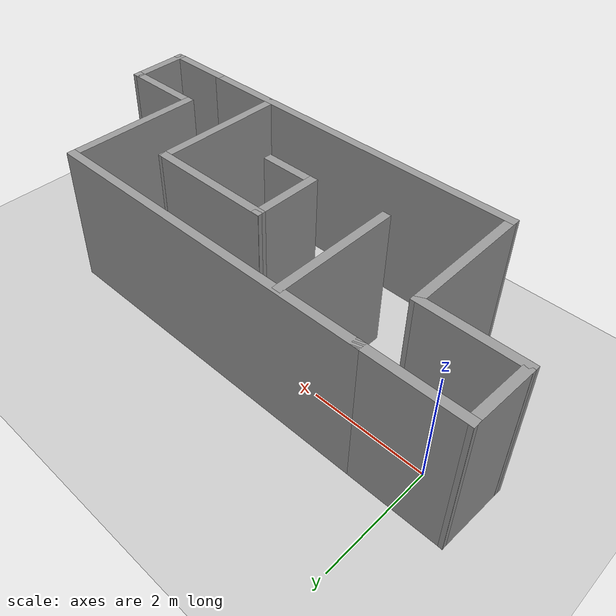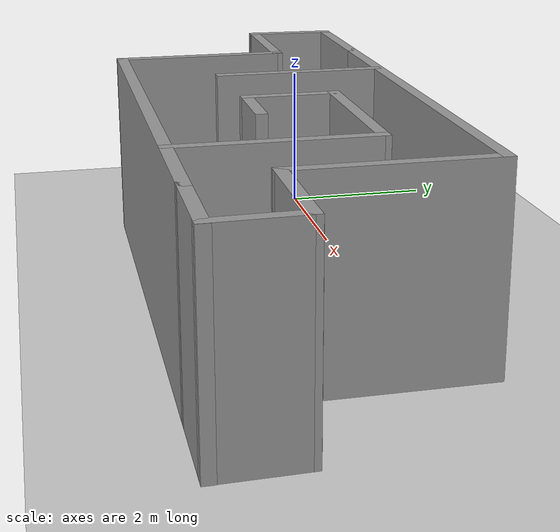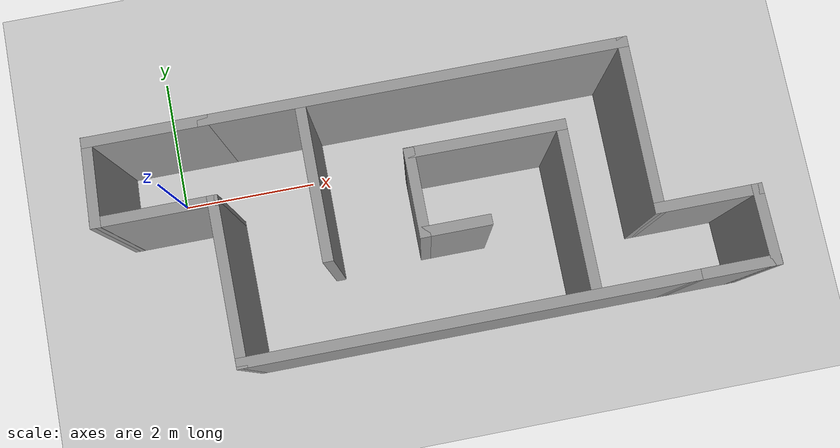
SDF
<sdf version="1.6">
 <world name="default">
  <light name="sun" type="directional">
   <pose>0 0 10 0 -0 0</pose>
   <diffuse>0.8 0.8 0.8 1</diffuse>
   <specular>0.2 0.2 0.2 1</specular>
   <attenuation>
    <range>1000</range>
    <constant>0.9</constant>
    <linear>0.01</linear>
    <quadratic>0.001</quadratic>
   </attenuation>
   <direction>-0.5 0.1 -0.9</direction>
  </light>
  <model name="ground_plane">
   <static>1</static>
   <link name="link">
    <collision name="collision">
     <geometry><plane><normal>0 0 1</normal><size>100 100</size></plane></geometry>
     <surface><friction><ode><mu>100</mu><mu2>50</mu2></ode></friction></surface>
    </collision>
    <visual name="visual">
     <cast_shadows>0</cast_shadows>
     <geometry><plane><normal>0 0 1</normal><size>100 100</size></plane></geometry>
     <material>
      <script><uri>file://media/materials/scripts/gazebo.material</uri><name>Gazebo/Grey</name></script>
     </material>
    </visual>
   </link>
  </model>
  <gravity>0 0 -9.8</gravity>
  <magnetic_field>6e-06 2.3e-05 -4.2e-05</magnetic_field>
  <atmosphere type="adiabatic"/>
  <physics name="default_physics" default="0" type="ode">
   <max_step_size>0.001</max_step_size>
   <real_time_factor>1</real_time_factor>
   <real_time_update_rate>1000</real_time_update_rate>
  </physics>
  <scene><ambient>0.4 0.4 0.4 1</ambient><background>0.7 0.7 0.7 1</background><shadows>1</shadows></scene>
  <spherical_coordinates>
   <surface_model>EARTH_WGS84</surface_model>
   <latitude_deg>0</latitude_deg>
   <longitude_deg>0</longitude_deg>
   <elevation>0</elevation>
   <heading_deg>0</heading_deg>
  </spherical_coordinates>
  <model name="maze01">
   <pose>3.62004 -1.01283 0 0 -0 0</pose>
   <link name="Wall_13">
    <collision name="Wall_13_Collision">
     <geometry><box><size>6.29594 0.15 2.5</size></box></geometry>
     <pose>0 0 1.25 0 -0 0</pose>
    </collision>
    <visual name="Wall_13_Visual">
     <pose>0 0 1.25 0 -0 0</pose>
     <geometry><box><size>6.29594 0.15 2.5</size></box></geometry>
     <material>
      <script><uri>file://media/materials/scripts/gazebo.material</uri><name>Gazebo/Grey</name></script>
      <ambient>1 1 1 1</ambient>
     </material>
     <meta><layer>0</layer></meta>
    </visual>
    <pose>0.262681 -1.66556 0 0 -0 3.14094</pose>
   </link>
   <link name="Wall_14">
    <collision name="Wall_14_Collision">
     <geometry><box><size>2.36478 0.15 2.5</size></box></geometry>
     <pose>0 0 1.25 0 -0 0</pose>
    </collision>
    <visual name="Wall_14_Visual">
     <pose>0 0 1.25 0 -0 0</pose>
     <geometry><box><size>2.36478 0.15 2.5</size></box></geometry>
     <material>
      <script><uri>file://media/materials/scripts/gazebo.material</uri><name>Gazebo/Grey</name></script>
      <ambient>1 1 1 1</ambient>
     </material>
     <meta><layer>0</layer></meta>
    </visual>
    <pose>-2.82157 -0.55622 0 0 -0 1.58098</pose>
   </link>
   <link name="Wall_16">
    <collision name="Wall_16_Collision">
     <geometry><box><size>2.25 0.15 2.5</size></box></geometry>
     <pose>0 0 1.25 0 -0 0</pose>
    </collision>
    <visual name="Wall_16_Visual">
     <pose>0 0 1.25 0 -0 0</pose>
     <geometry><box><size>2.25 0.15 2.5</size></box></geometry>
     <material>
      <script><uri>file://media/materials/scripts/gazebo.material</uri><name>Gazebo/Grey</name></script>
      <ambient>1 1 1 1</ambient>
     </material>
     <meta><layer>0</layer></meta>
    </visual>
    <pose>-1.45029 0.566449 0 0 0 -1.5708</pose>
   </link>
   <link name="Wall_18">
    <collision name="Wall_18_Collision">
     <geometry><box><size>1.25005 0.15 2.5</size></box></geometry>
     <pose>0 0 1.25 0 -0 0</pose>
    </collision>
    <visual name="Wall_18_Visual">
     <pose>0 0 1.25 0 -0 0</pose>
     <geometry><box><size>1.25005 0.15 2.5</size></box></geometry>
     <material>
      <script><uri>file://media/materials/scripts/gazebo.material</uri><name>Gazebo/Grey</name></script>
      <ambient>1 1 1 1</ambient>
     </material>
     <meta><layer>0</layer></meta>
    </visual>
    <pose>-0.110289 0.141421 0 0 0 -1.5708</pose>
   </link>
   <link name="Wall_21">
    <collision name="Wall_21_Collision">
     <geometry><box><size>2.25 0.15 2.5</size></box></geometry>
     <pose>0 0 1.25 0 -0 0</pose>
    </collision>
    <visual name="Wall_21_Visual">
     <pose>0 0 1.25 0 -0 0</pose>
     <geometry><box><size>2.25 0.15 2.5</size></box></geometry>
     <material>
      <script><uri>file://media/materials/scripts/gazebo.material</uri><name>Gazebo/Grey</name></script>
      <ambient>1 1 1 1</ambient>
     </material>
     <meta><layer>0</layer></meta>
    </visual>
    <pose>0.939711 0.691421 0 0 0 -0.004735</pose>
   </link>
   <link name="Wall_22">
    <collision name="Wall_22_Collision">
     <geometry><box><size>2.5 0.15 2.5</size></box></geometry>
     <pose>0 0 1.25 0 -0 0</pose>
    </collision>
    <visual name="Wall_22_Visual">
     <pose>0 0 1.25 0 -0 0</pose>
     <geometry><box><size>2.5 0.15 2.5</size></box></geometry>
     <material>
      <script><uri>file://media/materials/scripts/gazebo.material</uri><name>Gazebo/Grey</name></script>
      <ambient>1 1 1 1</ambient>
     </material>
     <meta><layer>0</layer></meta>
    </visual>
    <pose>1.98971 -0.488551 0 0 0 -1.5708</pose>
   </link>
   <link name="Wall_24">
    <collision name="Wall_24_Collision">
     <geometry><box><size>1 0.15 2.5</size></box></geometry>
     <pose>0 0 1.25 0 -0 0</pose>
    </collision>
    <visual name="Wall_24_Visual">
     <pose>0 0 1.25 0 -0 0</pose>
     <geometry><box><size>1 0.15 2.5</size></box></geometry>
     <material>
      <script><uri>file://media/materials/scripts/gazebo.material</uri><name>Gazebo/Grey</name></script>
      <ambient>1 1 1 1</ambient>
     </material>
     <meta><layer>0</layer></meta>
    </visual>
    <pose>0.314711 -0.408579 0 0 -0 0</pose>
   </link>
   <link name="Wall_27">
    <collision name="Wall_27_Collision">
     <geometry><box><size>1.75 0.15 2.5</size></box></geometry>
     <pose>0 0 1.25 0 -0 0</pose>
    </collision>
    <visual name="Wall_27_Visual">
     <pose>0 0 1.25 0 -0 0</pose>
     <geometry><box><size>1.75 0.15 2.5</size></box></geometry>
     <material>
      <script><uri>file://media/materials/scripts/gazebo.material</uri><name>Gazebo/Grey</name></script>
      <ambient>1 1 1 1</ambient>
     </material>
     <meta><layer>0</layer></meta>
    </visual>
    <pose>-3.59029 1.66645 0 0 -0 3.14159</pose>
   </link>
   <link name="Wall_34">
    <collision name="Wall_34_Collision">
     <geometry><box><size>1.75 0.15 2.5</size></box></geometry>
     <pose>0 0 1.25 0 -0 0</pose>
    </collision>
    <visual name="Wall_34_Visual">
     <pose>0 0 1.25 0 -0 0</pose>
     <geometry><box><size>1.75 0.15 2.5</size></box></geometry>
     <material>
      <script><uri>file://media/materials/scripts/gazebo.material</uri><name>Gazebo/Grey</name></script>
      <ambient>1 1 1 1</ambient>
     </material>
     <meta><layer>0</layer></meta>
    </visual>
    <pose>-3.63285 0.551112 0 0 -0 3.14159</pose>
   </link>
   <link name="Wall_35">
    <collision name="Wall_35_Collision">
     <geometry><box><size>1.26615 0.15 2.5</size></box></geometry>
     <pose>0 0 1.25 0 -0 0</pose>
    </collision>
    <visual name="Wall_35_Visual">
     <pose>0 0 1.25 0 -0 0</pose>
     <geometry><box><size>1.26615 0.15 2.5</size></box></geometry>
     <material>
      <script><uri>file://media/materials/scripts/gazebo.material</uri><name>Gazebo/Grey</name></script>
      <ambient>1 1 1 1</ambient>
     </material>
     <meta><layer>0</layer></meta>
    </visual>
    <pose>-4.41157 1.10878 0 0 -0 1.53266</pose>
   </link>
   <link name="Wall_37">
    <collision name="Wall_37_Collision">
     <geometry><box><size>1.5 0.15 2.5</size></box></geometry>
     <pose>0 0 1.25 0 -0 0</pose>
    </collision>
    <visual name="Wall_37_Visual">
     <pose>0 0 1.25 0 -0 0</pose>
     <geometry><box><size>1.5 0.15 2.5</size></box></geometry>
     <material>
      <script><uri>file://media/materials/scripts/gazebo.material</uri><name>Gazebo/Grey</name></script>
      <ambient>1 1 1 1</ambient>
     </material>
     <meta><layer>0</layer></meta>
    </visual>
    <pose>3.73471 -0.683551 0 0 -0 0</pose>
   </link>
   <link name="Wall_39">
    <collision name="Wall_39_Collision">
     <geometry><box><size>1.13436 0.15 2.5</size></box></geometry>
     <pose>0 0 1.25 0 -0 0</pose>
    </collision>
    <visual name="Wall_39_Visual">
     <pose>0 0 1.25 0 -0 0</pose>
     <geometry><box><size>1.13436 0.15 2.5</size></box></geometry>
     <material>
      <script><uri>file://media/materials/scripts/gazebo.material</uri><name>Gazebo/Grey</name></script>
      <ambient>1 1 1 1</ambient>
     </material>
     <meta><layer>0</layer></meta>
    </visual>
    <pose>4.42052 -1.17556 0 0 0 -1.54883</pose>
   </link>
   <link name="Wall_41">
    <collision name="Wall_41_Collision">
     <geometry><box><size>1.25 0.15 2.5</size></box></geometry>
     <pose>0 0 1.25 0 -0 0</pose>
    </collision>
    <visual name="Wall_41_Visual">
     <pose>0 0 1.25 0 -0 0</pose>
     <geometry><box><size>1.25 0.15 2.5</size></box></geometry>
     <material>
      <script><uri>file://media/materials/scripts/gazebo.material</uri><name>Gazebo/Grey</name></script>
      <ambient>1 1 1 1</ambient>
     </material>
     <meta><layer>0</layer></meta>
    </visual>
    <pose>3.88565 -1.66757 0 0 -0 0</pose>
   </link>
   <link name="Wall_5">
    <collision name="Wall_5_Collision">
     <geometry><box><size>6 0.15 2.5</size></box></geometry>
     <pose>0 0 1.25 0 -0 0</pose>
    </collision>
    <visual name="Wall_5_Visual">
     <pose>0 0 1.25 0 -0 0</pose>
     <geometry><box><size>6 0.15 2.5</size></box></geometry>
     <material>
      <script><uri>file://media/materials/scripts/gazebo.material</uri><name>Gazebo/Grey</name></script>
      <ambient>1 1 1 1</ambient>
     </material>
     <meta><layer>0</layer></meta>
    </visual>
    <pose>0.134711 1.66645 0 0 -0 0</pose>
   </link>
   <link name="Wall_6">
    <collision name="Wall_6_Collision">
     <geometry><box><size>2.5 0.15 2.5</size></box></geometry>
     <pose>0 0 1.25 0 -0 0</pose>
    </collision>
    <visual name="Wall_6_Visual">
     <pose>0 0 1.25 0 -0 0</pose>
     <geometry><box><size>2.5 0.15 2.5</size></box></geometry>
     <material>
      <script><uri>file://media/materials/scripts/gazebo.material</uri><name>Gazebo/Grey</name></script>
      <ambient>1 1 1 1</ambient>
     </material>
     <meta><layer>0</layer></meta>
    </visual>
    <pose>3.05971 0.491449 0 0 0 -1.5708</pose>
   </link>
   <static>1</static>
  </model>
 </world>
</sdf>
